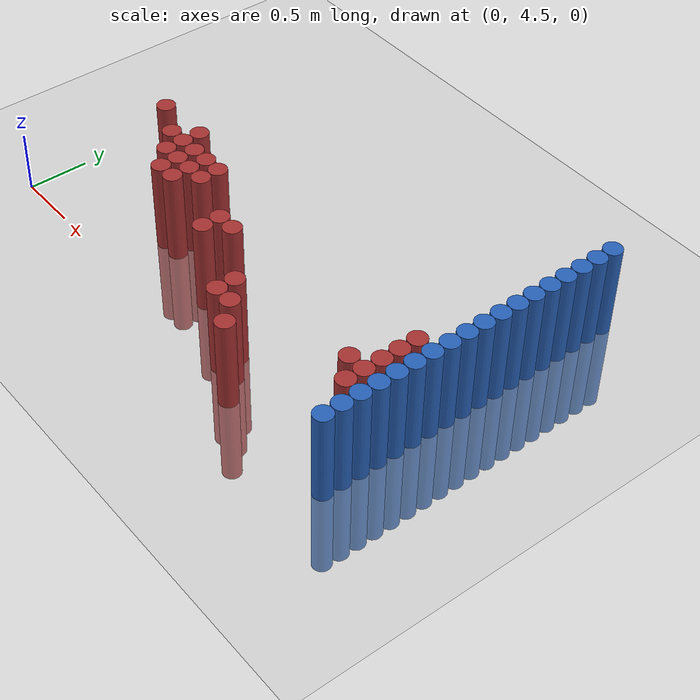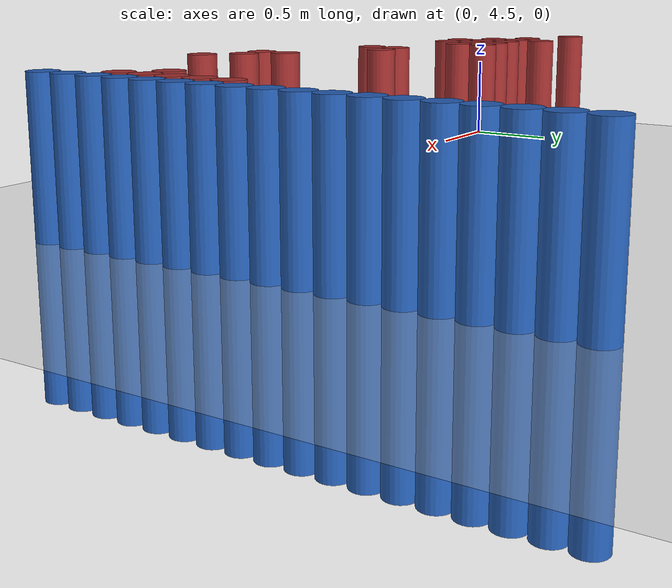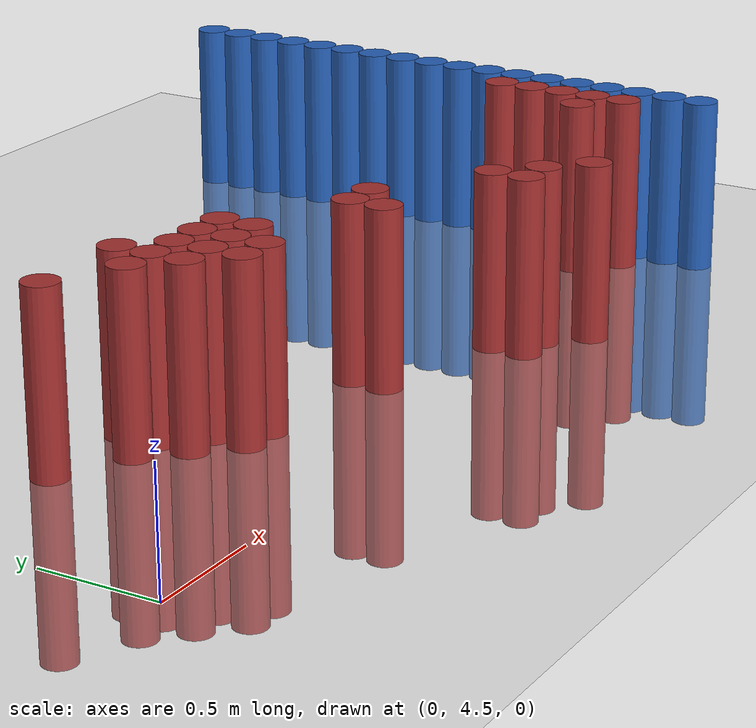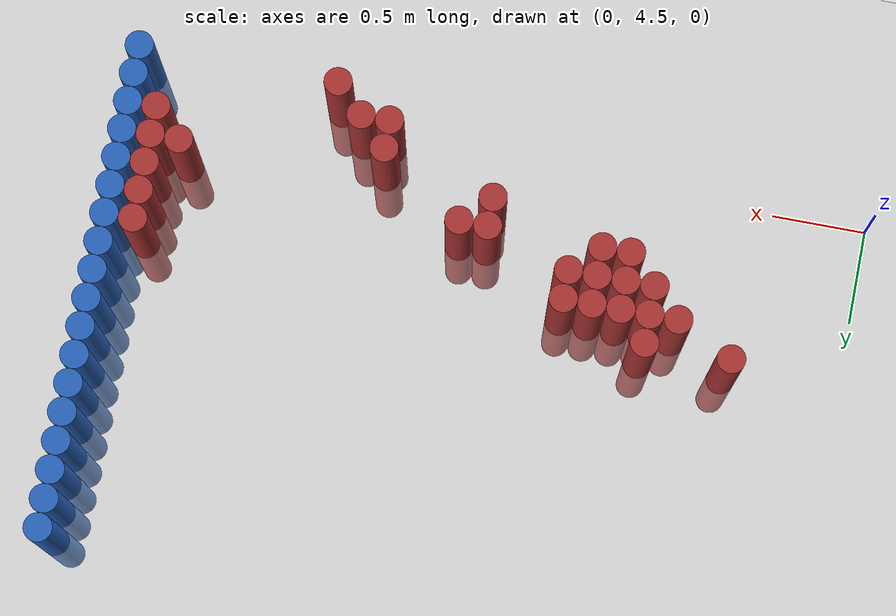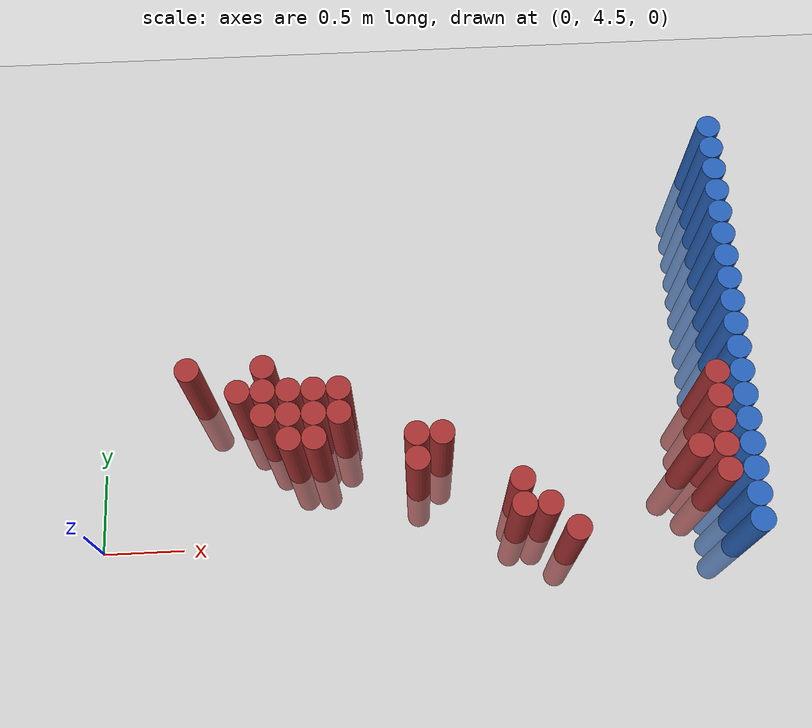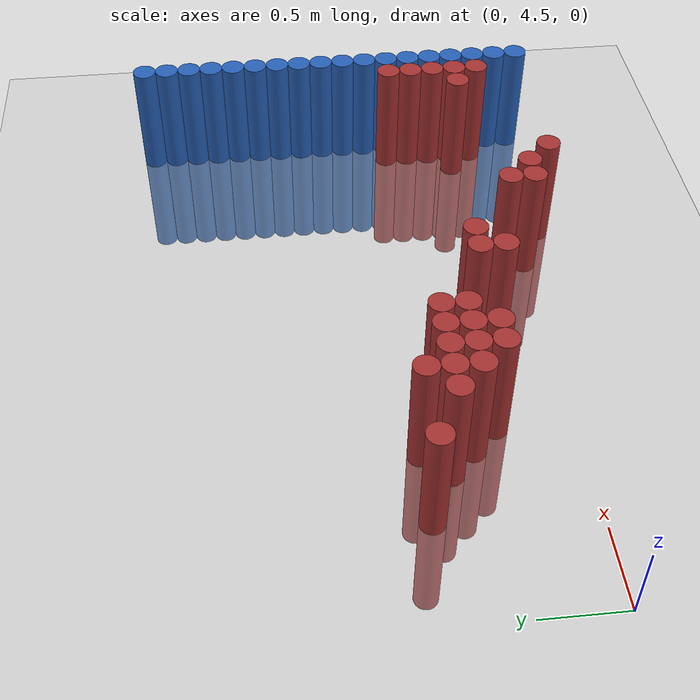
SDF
<sdf version="1.6">
 <world name="default">
  <model name="ground_plane">
   <static>1</static>
   <link name="link">
    <collision name="collision">
     <geometry><plane><normal>0 0 1</normal><size>100 100</size></plane></geometry>
     <surface><friction><ode><mu>100</mu><mu2>50</mu2></ode></friction></surface>
    </collision>
    <visual name="visual">
     <cast_shadows>0</cast_shadows>
     <geometry><plane><normal>0 0 1</normal><size>100 100</size></plane></geometry>
     <material>
      <script><uri>file://media/materials/scripts/gazebo.material</uri><name>Gazebo/Grey</name></script>
     </material>
    </visual>
   </link>
  </model>
  <model name="unit_cylinder_172">
   <static>1</static>
   <pose>3.925000 4.375000 0.000000 0.000000 0.000000 0.000000</pose>
   <link name="link">
    <inertial>
     <mass>1</mass>
     <inertia><ixx>0.145833</ixx><ixy>0</ixy><ixz>0</ixz><iyy>0.145833</iyy><iyz>0</iyz><izz>0.125</izz></inertia>
    </inertial>
    <collision name="collision">
     <geometry><cylinder><radius>0.075000</radius><length>1.5</length></cylinder></geometry>
    </collision>
    <visual name="visual">
     <geometry><cylinder><radius>0.075000</radius><length>1.5</length></cylinder></geometry>
     <material>
      <ambient>0.152000 0.379000 0.720000 1</ambient>
      <diffuse>0.152000 0.379000 0.720000 1</diffuse>
     </material>
     <material>
      <script><name>Gazebo/Grey</name><uri>file://media/materials/scripts/gazebo.material</uri></script>
     </material>
    </visual>
   </link>
  </model>
  <model name="unit_cylinder_174">
   <static>1</static>
   <pose>3.925000 4.525000 0.000000 0.000000 0.000000 0.000000</pose>
   <link name="link">
    <inertial>
     <mass>1</mass>
     <inertia><ixx>0.145833</ixx><ixy>0</ixy><ixz>0</ixz><iyy>0.145833</iyy><iyz>0</iyz><izz>0.125</izz></inertia>
    </inertial>
    <collision name="collision">
     <geometry><cylinder><radius>0.075000</radius><length>1.5</length></cylinder></geometry>
    </collision>
    <visual name="visual">
     <geometry><cylinder><radius>0.075000</radius><length>1.5</length></cylinder></geometry>
     <material>
      <ambient>0.152000 0.379000 0.720000 1</ambient>
      <diffuse>0.152000 0.379000 0.720000 1</diffuse>
     </material>
     <material>
      <script><name>Gazebo/Grey</name><uri>file://media/materials/scripts/gazebo.material</uri></script>
     </material>
    </visual>
   </link>
  </model>
  <model name="unit_cylinder_176">
   <static>1</static>
   <pose>3.925000 4.675000 0.000000 0.000000 0.000000 0.000000</pose>
   <link name="link">
    <inertial>
     <mass>1</mass>
     <inertia><ixx>0.145833</ixx><ixy>0</ixy><ixz>0</ixz><iyy>0.145833</iyy><iyz>0</iyz><izz>0.125</izz></inertia>
    </inertial>
    <collision name="collision">
     <geometry><cylinder><radius>0.075000</radius><length>1.5</length></cylinder></geometry>
    </collision>
    <visual name="visual">
     <geometry><cylinder><radius>0.075000</radius><length>1.5</length></cylinder></geometry>
     <material>
      <ambient>0.152000 0.379000 0.720000 1</ambient>
      <diffuse>0.152000 0.379000 0.720000 1</diffuse>
     </material>
     <material>
      <script><name>Gazebo/Grey</name><uri>file://media/materials/scripts/gazebo.material</uri></script>
     </material>
    </visual>
   </link>
  </model>
  <model name="unit_cylinder_178">
   <static>1</static>
   <pose>3.925000 4.825000 0.000000 0.000000 0.000000 0.000000</pose>
   <link name="link">
    <inertial>
     <mass>1</mass>
     <inertia><ixx>0.145833</ixx><ixy>0</ixy><ixz>0</ixz><iyy>0.145833</iyy><iyz>0</iyz><izz>0.125</izz></inertia>
    </inertial>
    <collision name="collision">
     <geometry><cylinder><radius>0.075000</radius><length>1.5</length></cylinder></geometry>
    </collision>
    <visual name="visual">
     <geometry><cylinder><radius>0.075000</radius><length>1.5</length></cylinder></geometry>
     <material>
      <ambient>0.152000 0.379000 0.720000 1</ambient>
      <diffuse>0.152000 0.379000 0.720000 1</diffuse>
     </material>
     <material>
      <script><name>Gazebo/Grey</name><uri>file://media/materials/scripts/gazebo.material</uri></script>
     </material>
    </visual>
   </link>
  </model>
  <model name="unit_cylinder_180">
   <static>1</static>
   <pose>3.925000 4.975000 0.000000 0.000000 0.000000 0.000000</pose>
   <link name="link">
    <inertial>
     <mass>1</mass>
     <inertia><ixx>0.145833</ixx><ixy>0</ixy><ixz>0</ixz><iyy>0.145833</iyy><iyz>0</iyz><izz>0.125</izz></inertia>
    </inertial>
    <collision name="collision">
     <geometry><cylinder><radius>0.075000</radius><length>1.5</length></cylinder></geometry>
    </collision>
    <visual name="visual">
     <geometry><cylinder><radius>0.075000</radius><length>1.5</length></cylinder></geometry>
     <material>
      <ambient>0.152000 0.379000 0.720000 1</ambient>
      <diffuse>0.152000 0.379000 0.720000 1</diffuse>
     </material>
     <material>
      <script><name>Gazebo/Grey</name><uri>file://media/materials/scripts/gazebo.material</uri></script>
     </material>
    </visual>
   </link>
  </model>
  <model name="unit_cylinder_182">
   <static>1</static>
   <pose>3.925000 5.125000 0.000000 0.000000 0.000000 0.000000</pose>
   <link name="link">
    <inertial>
     <mass>1</mass>
     <inertia><ixx>0.145833</ixx><ixy>0</ixy><ixz>0</ixz><iyy>0.145833</iyy><iyz>0</iyz><izz>0.125</izz></inertia>
    </inertial>
    <collision name="collision">
     <geometry><cylinder><radius>0.075000</radius><length>1.5</length></cylinder></geometry>
    </collision>
    <visual name="visual">
     <geometry><cylinder><radius>0.075000</radius><length>1.5</length></cylinder></geometry>
     <material>
      <ambient>0.152000 0.379000 0.720000 1</ambient>
      <diffuse>0.152000 0.379000 0.720000 1</diffuse>
     </material>
     <material>
      <script><name>Gazebo/Grey</name><uri>file://media/materials/scripts/gazebo.material</uri></script>
     </material>
    </visual>
   </link>
  </model>
  <model name="unit_cylinder_184">
   <static>1</static>
   <pose>3.925000 5.275000 0.000000 0.000000 0.000000 0.000000</pose>
   <link name="link">
    <inertial>
     <mass>1</mass>
     <inertia><ixx>0.145833</ixx><ixy>0</ixy><ixz>0</ixz><iyy>0.145833</iyy><iyz>0</iyz><izz>0.125</izz></inertia>
    </inertial>
    <collision name="collision">
     <geometry><cylinder><radius>0.075000</radius><length>1.5</length></cylinder></geometry>
    </collision>
    <visual name="visual">
     <geometry><cylinder><radius>0.075000</radius><length>1.5</length></cylinder></geometry>
     <material>
      <ambient>0.152000 0.379000 0.720000 1</ambient>
      <diffuse>0.152000 0.379000 0.720000 1</diffuse>
     </material>
     <material>
      <script><name>Gazebo/Grey</name><uri>file://media/materials/scripts/gazebo.material</uri></script>
     </material>
    </visual>
   </link>
  </model>
  <model name="unit_cylinder_186">
   <static>1</static>
   <pose>3.925000 5.425000 0.000000 0.000000 0.000000 0.000000</pose>
   <link name="link">
    <inertial>
     <mass>1</mass>
     <inertia><ixx>0.145833</ixx><ixy>0</ixy><ixz>0</ixz><iyy>0.145833</iyy><iyz>0</iyz><izz>0.125</izz></inertia>
    </inertial>
    <collision name="collision">
     <geometry><cylinder><radius>0.075000</radius><length>1.5</length></cylinder></geometry>
    </collision>
    <visual name="visual">
     <geometry><cylinder><radius>0.075000</radius><length>1.5</length></cylinder></geometry>
     <material>
      <ambient>0.152000 0.379000 0.720000 1</ambient>
      <diffuse>0.152000 0.379000 0.720000 1</diffuse>
     </material>
     <material>
      <script><name>Gazebo/Grey</name><uri>file://media/materials/scripts/gazebo.material</uri></script>
     </material>
    </visual>
   </link>
  </model>
  <model name="unit_cylinder_188">
   <static>1</static>
   <pose>3.925000 5.575000 0.000000 0.000000 0.000000 0.000000</pose>
   <link name="link">
    <inertial>
     <mass>1</mass>
     <inertia><ixx>0.145833</ixx><ixy>0</ixy><ixz>0</ixz><iyy>0.145833</iyy><iyz>0</iyz><izz>0.125</izz></inertia>
    </inertial>
    <collision name="collision">
     <geometry><cylinder><radius>0.075000</radius><length>1.5</length></cylinder></geometry>
    </collision>
    <visual name="visual">
     <geometry><cylinder><radius>0.075000</radius><length>1.5</length></cylinder></geometry>
     <material>
      <ambient>0.152000 0.379000 0.720000 1</ambient>
      <diffuse>0.152000 0.379000 0.720000 1</diffuse>
     </material>
     <material>
      <script><name>Gazebo/Grey</name><uri>file://media/materials/scripts/gazebo.material</uri></script>
     </material>
    </visual>
   </link>
  </model>
  <model name="unit_cylinder_190">
   <static>1</static>
   <pose>3.925000 5.725000 0.000000 0.000000 0.000000 0.000000</pose>
   <link name="link">
    <inertial>
     <mass>1</mass>
     <inertia><ixx>0.145833</ixx><ixy>0</ixy><ixz>0</ixz><iyy>0.145833</iyy><iyz>0</iyz><izz>0.125</izz></inertia>
    </inertial>
    <collision name="collision">
     <geometry><cylinder><radius>0.075000</radius><length>1.5</length></cylinder></geometry>
    </collision>
    <visual name="visual">
     <geometry><cylinder><radius>0.075000</radius><length>1.5</length></cylinder></geometry>
     <material>
      <ambient>0.152000 0.379000 0.720000 1</ambient>
      <diffuse>0.152000 0.379000 0.720000 1</diffuse>
     </material>
     <material>
      <script><name>Gazebo/Grey</name><uri>file://media/materials/scripts/gazebo.material</uri></script>
     </material>
    </visual>
   </link>
  </model>
  <model name="unit_cylinder_192">
   <static>1</static>
   <pose>3.925000 5.875000 0.000000 0.000000 0.000000 0.000000</pose>
   <link name="link">
    <inertial>
     <mass>1</mass>
     <inertia><ixx>0.145833</ixx><ixy>0</ixy><ixz>0</ixz><iyy>0.145833</iyy><iyz>0</iyz><izz>0.125</izz></inertia>
    </inertial>
    <collision name="collision">
     <geometry><cylinder><radius>0.075000</radius><length>1.5</length></cylinder></geometry>
    </collision>
    <visual name="visual">
     <geometry><cylinder><radius>0.075000</radius><length>1.5</length></cylinder></geometry>
     <material>
      <ambient>0.152000 0.379000 0.720000 1</ambient>
      <diffuse>0.152000 0.379000 0.720000 1</diffuse>
     </material>
     <material>
      <script><name>Gazebo/Grey</name><uri>file://media/materials/scripts/gazebo.material</uri></script>
     </material>
    </visual>
   </link>
  </model>
  <model name="unit_cylinder_194">
   <static>1</static>
   <pose>3.925000 6.025000 0.000000 0.000000 0.000000 0.000000</pose>
   <link name="link">
    <inertial>
     <mass>1</mass>
     <inertia><ixx>0.145833</ixx><ixy>0</ixy><ixz>0</ixz><iyy>0.145833</iyy><iyz>0</iyz><izz>0.125</izz></inertia>
    </inertial>
    <collision name="collision">
     <geometry><cylinder><radius>0.075000</radius><length>1.5</length></cylinder></geometry>
    </collision>
    <visual name="visual">
     <geometry><cylinder><radius>0.075000</radius><length>1.5</length></cylinder></geometry>
     <material>
      <ambient>0.152000 0.379000 0.720000 1</ambient>
      <diffuse>0.152000 0.379000 0.720000 1</diffuse>
     </material>
     <material>
      <script><name>Gazebo/Grey</name><uri>file://media/materials/scripts/gazebo.material</uri></script>
     </material>
    </visual>
   </link>
  </model>
  <model name="unit_cylinder_196">
   <static>1</static>
   <pose>3.925000 6.175000 0.000000 0.000000 0.000000 0.000000</pose>
   <link name="link">
    <inertial>
     <mass>1</mass>
     <inertia><ixx>0.145833</ixx><ixy>0</ixy><ixz>0</ixz><iyy>0.145833</iyy><iyz>0</iyz><izz>0.125</izz></inertia>
    </inertial>
    <collision name="collision">
     <geometry><cylinder><radius>0.075000</radius><length>1.5</length></cylinder></geometry>
    </collision>
    <visual name="visual">
     <geometry><cylinder><radius>0.075000</radius><length>1.5</length></cylinder></geometry>
     <material>
      <ambient>0.152000 0.379000 0.720000 1</ambient>
      <diffuse>0.152000 0.379000 0.720000 1</diffuse>
     </material>
     <material>
      <script><name>Gazebo/Grey</name><uri>file://media/materials/scripts/gazebo.material</uri></script>
     </material>
    </visual>
   </link>
  </model>
  <model name="unit_cylinder_198">
   <static>1</static>
   <pose>3.925000 6.325000 0.000000 0.000000 0.000000 0.000000</pose>
   <link name="link">
    <inertial>
     <mass>1</mass>
     <inertia><ixx>0.145833</ixx><ixy>0</ixy><ixz>0</ixz><iyy>0.145833</iyy><iyz>0</iyz><izz>0.125</izz></inertia>
    </inertial>
    <collision name="collision">
     <geometry><cylinder><radius>0.075000</radius><length>1.5</length></cylinder></geometry>
    </collision>
    <visual name="visual">
     <geometry><cylinder><radius>0.075000</radius><length>1.5</length></cylinder></geometry>
     <material>
      <ambient>0.152000 0.379000 0.720000 1</ambient>
      <diffuse>0.152000 0.379000 0.720000 1</diffuse>
     </material>
     <material>
      <script><name>Gazebo/Grey</name><uri>file://media/materials/scripts/gazebo.material</uri></script>
     </material>
    </visual>
   </link>
  </model>
  <model name="unit_cylinder_200">
   <static>1</static>
   <pose>3.925000 6.475000 0.000000 0.000000 0.000000 0.000000</pose>
   <link name="link">
    <inertial>
     <mass>1</mass>
     <inertia><ixx>0.145833</ixx><ixy>0</ixy><ixz>0</ixz><iyy>0.145833</iyy><iyz>0</iyz><izz>0.125</izz></inertia>
    </inertial>
    <collision name="collision">
     <geometry><cylinder><radius>0.075000</radius><length>1.5</length></cylinder></geometry>
    </collision>
    <visual name="visual">
     <geometry><cylinder><radius>0.075000</radius><length>1.5</length></cylinder></geometry>
     <material>
      <ambient>0.152000 0.379000 0.720000 1</ambient>
      <diffuse>0.152000 0.379000 0.720000 1</diffuse>
     </material>
     <material>
      <script><name>Gazebo/Grey</name><uri>file://media/materials/scripts/gazebo.material</uri></script>
     </material>
    </visual>
   </link>
  </model>
  <model name="unit_cylinder_202">
   <static>1</static>
   <pose>3.925000 6.625000 0.000000 0.000000 0.000000 0.000000</pose>
   <link name="link">
    <inertial>
     <mass>1</mass>
     <inertia><ixx>0.145833</ixx><ixy>0</ixy><ixz>0</ixz><iyy>0.145833</iyy><iyz>0</iyz><izz>0.125</izz></inertia>
    </inertial>
    <collision name="collision">
     <geometry><cylinder><radius>0.075000</radius><length>1.5</length></cylinder></geometry>
    </collision>
    <visual name="visual">
     <geometry><cylinder><radius>0.075000</radius><length>1.5</length></cylinder></geometry>
     <material>
      <ambient>0.152000 0.379000 0.720000 1</ambient>
      <diffuse>0.152000 0.379000 0.720000 1</diffuse>
     </material>
     <material>
      <script><name>Gazebo/Grey</name><uri>file://media/materials/scripts/gazebo.material</uri></script>
     </material>
    </visual>
   </link>
  </model>
  <model name="unit_cylinder_204">
   <static>1</static>
   <pose>3.925000 6.775000 0.000000 0.000000 0.000000 0.000000</pose>
   <link name="link">
    <inertial>
     <mass>1</mass>
     <inertia><ixx>0.145833</ixx><ixy>0</ixy><ixz>0</ixz><iyy>0.145833</iyy><iyz>0</iyz><izz>0.125</izz></inertia>
    </inertial>
    <collision name="collision">
     <geometry><cylinder><radius>0.075000</radius><length>1.5</length></cylinder></geometry>
    </collision>
    <visual name="visual">
     <geometry><cylinder><radius>0.075000</radius><length>1.5</length></cylinder></geometry>
     <material>
      <ambient>0.152000 0.379000 0.720000 1</ambient>
      <diffuse>0.152000 0.379000 0.720000 1</diffuse>
     </material>
     <material>
      <script><name>Gazebo/Grey</name><uri>file://media/materials/scripts/gazebo.material</uri></script>
     </material>
    </visual>
   </link>
  </model>
  <model name="unit_cylinder_206">
   <static>1</static>
   <pose>3.925000 6.925000 0.000000 0.000000 0.000000 0.000000</pose>
   <link name="link">
    <inertial>
     <mass>1</mass>
     <inertia><ixx>0.145833</ixx><ixy>0</ixy><ixz>0</ixz><iyy>0.145833</iyy><iyz>0</iyz><izz>0.125</izz></inertia>
    </inertial>
    <collision name="collision">
     <geometry><cylinder><radius>0.075000</radius><length>1.5</length></cylinder></geometry>
    </collision>
    <visual name="visual">
     <geometry><cylinder><radius>0.075000</radius><length>1.5</length></cylinder></geometry>
     <material>
      <ambient>0.152000 0.379000 0.720000 1</ambient>
      <diffuse>0.152000 0.379000 0.720000 1</diffuse>
     </material>
     <material>
      <script><name>Gazebo/Grey</name><uri>file://media/materials/scripts/gazebo.material</uri></script>
     </material>
    </visual>
   </link>
  </model>
  <model name="unit_cylinder_386">
   <static>1</static>
   <pose>0.625000 5.425000 0.000000 0.000000 0.000000 0.000000</pose>
   <link name="link">
    <inertial>
     <mass>1</mass>
     <inertia><ixx>0.145833</ixx><ixy>0</ixy><ixz>0</ixz><iyy>0.145833</iyy><iyz>0</iyz><izz>0.125</izz></inertia>
    </inertial>
    <collision name="collision">
     <geometry><cylinder><radius>0.075000</radius><length>1.5</length></cylinder></geometry>
    </collision>
    <visual name="visual">
     <geometry><cylinder><radius>0.075000</radius><length>1.5</length></cylinder></geometry>
     <material>
      <ambient>0.648000 0.192000 0.192000 1</ambient>
      <diffuse>0.648000 0.192000 0.192000 1</diffuse>
     </material>
     <material>
      <script><name>Gazebo/Grey</name><uri>file://media/materials/scripts/gazebo.material</uri></script>
     </material>
    </visual>
   </link>
  </model>
  <model name="unit_cylinder_402">
   <static>1</static>
   <pose>0.925000 5.275000 0.000000 0.000000 0.000000 0.000000</pose>
   <link name="link">
    <inertial>
     <mass>1</mass>
     <inertia><ixx>0.145833</ixx><ixy>0</ixy><ixz>0</ixz><iyy>0.145833</iyy><iyz>0</iyz><izz>0.125</izz></inertia>
    </inertial>
    <collision name="collision">
     <geometry><cylinder><radius>0.075000</radius><length>1.5</length></cylinder></geometry>
    </collision>
    <visual name="visual">
     <geometry><cylinder><radius>0.075000</radius><length>1.5</length></cylinder></geometry>
     <material>
      <ambient>0.648000 0.192000 0.192000 1</ambient>
      <diffuse>0.648000 0.192000 0.192000 1</diffuse>
     </material>
     <material>
      <script><name>Gazebo/Grey</name><uri>file://media/materials/scripts/gazebo.material</uri></script>
     </material>
    </visual>
   </link>
  </model>
  <model name="unit_cylinder_413">
   <static>1</static>
   <pose>1.075000 5.125000 0.000000 0.000000 0.000000 0.000000</pose>
   <link name="link">
    <inertial>
     <mass>1</mass>
     <inertia><ixx>0.145833</ixx><ixy>0</ixy><ixz>0</ixz><iyy>0.145833</iyy><iyz>0</iyz><izz>0.125</izz></inertia>
    </inertial>
    <collision name="collision">
     <geometry><cylinder><radius>0.075000</radius><length>1.5</length></cylinder></geometry>
    </collision>
    <visual name="visual">
     <geometry><cylinder><radius>0.075000</radius><length>1.5</length></cylinder></geometry>
     <material>
      <ambient>0.648000 0.192000 0.192000 1</ambient>
      <diffuse>0.648000 0.192000 0.192000 1</diffuse>
     </material>
     <material>
      <script><name>Gazebo/Grey</name><uri>file://media/materials/scripts/gazebo.material</uri></script>
     </material>
    </visual>
   </link>
  </model>
  <model name="unit_cylinder_414">
   <static>1</static>
   <pose>1.075000 5.275000 0.000000 0.000000 0.000000 0.000000</pose>
   <link name="link">
    <inertial>
     <mass>1</mass>
     <inertia><ixx>0.145833</ixx><ixy>0</ixy><ixz>0</ixz><iyy>0.145833</iyy><iyz>0</iyz><izz>0.125</izz></inertia>
    </inertial>
    <collision name="collision">
     <geometry><cylinder><radius>0.075000</radius><length>1.5</length></cylinder></geometry>
    </collision>
    <visual name="visual">
     <geometry><cylinder><radius>0.075000</radius><length>1.5</length></cylinder></geometry>
     <material>
      <ambient>0.648000 0.192000 0.192000 1</ambient>
      <diffuse>0.648000 0.192000 0.192000 1</diffuse>
     </material>
     <material>
      <script><name>Gazebo/Grey</name><uri>file://media/materials/scripts/gazebo.material</uri></script>
     </material>
    </visual>
   </link>
  </model>
  <model name="unit_cylinder_415">
   <static>1</static>
   <pose>1.075000 5.425000 0.000000 0.000000 0.000000 0.000000</pose>
   <link name="link">
    <inertial>
     <mass>1</mass>
     <inertia><ixx>0.145833</ixx><ixy>0</ixy><ixz>0</ixz><iyy>0.145833</iyy><iyz>0</iyz><izz>0.125</izz></inertia>
    </inertial>
    <collision name="collision">
     <geometry><cylinder><radius>0.075000</radius><length>1.5</length></cylinder></geometry>
    </collision>
    <visual name="visual">
     <geometry><cylinder><radius>0.075000</radius><length>1.5</length></cylinder></geometry>
     <material>
      <ambient>0.648000 0.192000 0.192000 1</ambient>
      <diffuse>0.648000 0.192000 0.192000 1</diffuse>
     </material>
     <material>
      <script><name>Gazebo/Grey</name><uri>file://media/materials/scripts/gazebo.material</uri></script>
     </material>
    </visual>
   </link>
  </model>
  <model name="unit_cylinder_425">
   <static>1</static>
   <pose>1.225000 4.975000 0.000000 0.000000 0.000000 0.000000</pose>
   <link name="link">
    <inertial>
     <mass>1</mass>
     <inertia><ixx>0.145833</ixx><ixy>0</ixy><ixz>0</ixz><iyy>0.145833</iyy><iyz>0</iyz><izz>0.125</izz></inertia>
    </inertial>
    <collision name="collision">
     <geometry><cylinder><radius>0.075000</radius><length>1.5</length></cylinder></geometry>
    </collision>
    <visual name="visual">
     <geometry><cylinder><radius>0.075000</radius><length>1.5</length></cylinder></geometry>
     <material>
      <ambient>0.648000 0.192000 0.192000 1</ambient>
      <diffuse>0.648000 0.192000 0.192000 1</diffuse>
     </material>
     <material>
      <script><name>Gazebo/Grey</name><uri>file://media/materials/scripts/gazebo.material</uri></script>
     </material>
    </visual>
   </link>
  </model>
  <model name="unit_cylinder_426">
   <static>1</static>
   <pose>1.225000 5.125000 0.000000 0.000000 0.000000 0.000000</pose>
   <link name="link">
    <inertial>
     <mass>1</mass>
     <inertia><ixx>0.145833</ixx><ixy>0</ixy><ixz>0</ixz><iyy>0.145833</iyy><iyz>0</iyz><izz>0.125</izz></inertia>
    </inertial>
    <collision name="collision">
     <geometry><cylinder><radius>0.075000</radius><length>1.5</length></cylinder></geometry>
    </collision>
    <visual name="visual">
     <geometry><cylinder><radius>0.075000</radius><length>1.5</length></cylinder></geometry>
     <material>
      <ambient>0.648000 0.192000 0.192000 1</ambient>
      <diffuse>0.648000 0.192000 0.192000 1</diffuse>
     </material>
     <material>
      <script><name>Gazebo/Grey</name><uri>file://media/materials/scripts/gazebo.material</uri></script>
     </material>
    </visual>
   </link>
  </model>
  <model name="unit_cylinder_427">
   <static>1</static>
   <pose>1.225000 5.275000 0.000000 0.000000 0.000000 0.000000</pose>
   <link name="link">
    <inertial>
     <mass>1</mass>
     <inertia><ixx>0.145833</ixx><ixy>0</ixy><ixz>0</ixz><iyy>0.145833</iyy><iyz>0</iyz><izz>0.125</izz></inertia>
    </inertial>
    <collision name="collision">
     <geometry><cylinder><radius>0.075000</radius><length>1.5</length></cylinder></geometry>
    </collision>
    <visual name="visual">
     <geometry><cylinder><radius>0.075000</radius><length>1.5</length></cylinder></geometry>
     <material>
      <ambient>0.648000 0.192000 0.192000 1</ambient>
      <diffuse>0.648000 0.192000 0.192000 1</diffuse>
     </material>
     <material>
      <script><name>Gazebo/Grey</name><uri>file://media/materials/scripts/gazebo.material</uri></script>
     </material>
    </visual>
   </link>
  </model>
  <model name="unit_cylinder_431">
   <static>1</static>
   <pose>1.375000 4.975000 0.000000 0.000000 0.000000 0.000000</pose>
   <link name="link">
    <inertial>
     <mass>1</mass>
     <inertia><ixx>0.145833</ixx><ixy>0</ixy><ixz>0</ixz><iyy>0.145833</iyy><iyz>0</iyz><izz>0.125</izz></inertia>
    </inertial>
    <collision name="collision">
     <geometry><cylinder><radius>0.075000</radius><length>1.5</length></cylinder></geometry>
    </collision>
    <visual name="visual">
     <geometry><cylinder><radius>0.075000</radius><length>1.5</length></cylinder></geometry>
     <material>
      <ambient>0.648000 0.192000 0.192000 1</ambient>
      <diffuse>0.648000 0.192000 0.192000 1</diffuse>
     </material>
     <material>
      <script><name>Gazebo/Grey</name><uri>file://media/materials/scripts/gazebo.material</uri></script>
     </material>
    </visual>
   </link>
  </model>
  <model name="unit_cylinder_432">
   <static>1</static>
   <pose>1.375000 5.125000 0.000000 0.000000 0.000000 0.000000</pose>
   <link name="link">
    <inertial>
     <mass>1</mass>
     <inertia><ixx>0.145833</ixx><ixy>0</ixy><ixz>0</ixz><iyy>0.145833</iyy><iyz>0</iyz><izz>0.125</izz></inertia>
    </inertial>
    <collision name="collision">
     <geometry><cylinder><radius>0.075000</radius><length>1.5</length></cylinder></geometry>
    </collision>
    <visual name="visual">
     <geometry><cylinder><radius>0.075000</radius><length>1.5</length></cylinder></geometry>
     <material>
      <ambient>0.648000 0.192000 0.192000 1</ambient>
      <diffuse>0.648000 0.192000 0.192000 1</diffuse>
     </material>
     <material>
      <script><name>Gazebo/Grey</name><uri>file://media/materials/scripts/gazebo.material</uri></script>
     </material>
    </visual>
   </link>
  </model>
  <model name="unit_cylinder_433">
   <static>1</static>
   <pose>1.375000 5.275000 0.000000 0.000000 0.000000 0.000000</pose>
   <link name="link">
    <inertial>
     <mass>1</mass>
     <inertia><ixx>0.145833</ixx><ixy>0</ixy><ixz>0</ixz><iyy>0.145833</iyy><iyz>0</iyz><izz>0.125</izz></inertia>
    </inertial>
    <collision name="collision">
     <geometry><cylinder><radius>0.075000</radius><length>1.5</length></cylinder></geometry>
    </collision>
    <visual name="visual">
     <geometry><cylinder><radius>0.075000</radius><length>1.5</length></cylinder></geometry>
     <material>
      <ambient>0.648000 0.192000 0.192000 1</ambient>
      <diffuse>0.648000 0.192000 0.192000 1</diffuse>
     </material>
     <material>
      <script><name>Gazebo/Grey</name><uri>file://media/materials/scripts/gazebo.material</uri></script>
     </material>
    </visual>
   </link>
  </model>
  <model name="unit_cylinder_436">
   <static>1</static>
   <pose>1.525000 5.125000 0.000000 0.000000 0.000000 0.000000</pose>
   <link name="link">
    <inertial>
     <mass>1</mass>
     <inertia><ixx>0.145833</ixx><ixy>0</ixy><ixz>0</ixz><iyy>0.145833</iyy><iyz>0</iyz><izz>0.125</izz></inertia>
    </inertial>
    <collision name="collision">
     <geometry><cylinder><radius>0.075000</radius><length>1.5</length></cylinder></geometry>
    </collision>
    <visual name="visual">
     <geometry><cylinder><radius>0.075000</radius><length>1.5</length></cylinder></geometry>
     <material>
      <ambient>0.648000 0.192000 0.192000 1</ambient>
      <diffuse>0.648000 0.192000 0.192000 1</diffuse>
     </material>
     <material>
      <script><name>Gazebo/Grey</name><uri>file://media/materials/scripts/gazebo.material</uri></script>
     </material>
    </visual>
   </link>
  </model>
  <model name="unit_cylinder_437">
   <static>1</static>
   <pose>1.525000 5.275000 0.000000 0.000000 0.000000 0.000000</pose>
   <link name="link">
    <inertial>
     <mass>1</mass>
     <inertia><ixx>0.145833</ixx><ixy>0</ixy><ixz>0</ixz><iyy>0.145833</iyy><iyz>0</iyz><izz>0.125</izz></inertia>
    </inertial>
    <collision name="collision">
     <geometry><cylinder><radius>0.075000</radius><length>1.5</length></cylinder></geometry>
    </collision>
    <visual name="visual">
     <geometry><cylinder><radius>0.075000</radius><length>1.5</length></cylinder></geometry>
     <material>
      <ambient>0.648000 0.192000 0.192000 1</ambient>
      <diffuse>0.648000 0.192000 0.192000 1</diffuse>
     </material>
     <material>
      <script><name>Gazebo/Grey</name><uri>file://media/materials/scripts/gazebo.material</uri></script>
     </material>
    </visual>
   </link>
  </model>
  <model name="unit_cylinder_438">
   <static>1</static>
   <pose>1.975000 4.825000 0.000000 0.000000 0.000000 0.000000</pose>
   <link name="link">
    <inertial>
     <mass>1</mass>
     <inertia><ixx>0.145833</ixx><ixy>0</ixy><ixz>0</ixz><iyy>0.145833</iyy><iyz>0</iyz><izz>0.125</izz></inertia>
    </inertial>
    <collision name="collision">
     <geometry><cylinder><radius>0.075000</radius><length>1.5</length></cylinder></geometry>
    </collision>
    <visual name="visual">
     <geometry><cylinder><radius>0.075000</radius><length>1.5</length></cylinder></geometry>
     <material>
      <ambient>0.648000 0.192000 0.192000 1</ambient>
      <diffuse>0.648000 0.192000 0.192000 1</diffuse>
     </material>
     <material>
      <script><name>Gazebo/Grey</name><uri>file://media/materials/scripts/gazebo.material</uri></script>
     </material>
    </visual>
   </link>
  </model>
  <model name="unit_cylinder_439">
   <static>1</static>
   <pose>1.975000 4.975000 0.000000 0.000000 0.000000 0.000000</pose>
   <link name="link">
    <inertial>
     <mass>1</mass>
     <inertia><ixx>0.145833</ixx><ixy>0</ixy><ixz>0</ixz><iyy>0.145833</iyy><iyz>0</iyz><izz>0.125</izz></inertia>
    </inertial>
    <collision name="collision">
     <geometry><cylinder><radius>0.075000</radius><length>1.5</length></cylinder></geometry>
    </collision>
    <visual name="visual">
     <geometry><cylinder><radius>0.075000</radius><length>1.5</length></cylinder></geometry>
     <material>
      <ambient>0.648000 0.192000 0.192000 1</ambient>
      <diffuse>0.648000 0.192000 0.192000 1</diffuse>
     </material>
     <material>
      <script><name>Gazebo/Grey</name><uri>file://media/materials/scripts/gazebo.material</uri></script>
     </material>
    </visual>
   </link>
  </model>
  <model name="unit_cylinder_442">
   <static>1</static>
   <pose>2.125000 4.975000 0.000000 0.000000 0.000000 0.000000</pose>
   <link name="link">
    <inertial>
     <mass>1</mass>
     <inertia><ixx>0.145833</ixx><ixy>0</ixy><ixz>0</ixz><iyy>0.145833</iyy><iyz>0</iyz><izz>0.125</izz></inertia>
    </inertial>
    <collision name="collision">
     <geometry><cylinder><radius>0.075000</radius><length>1.5</length></cylinder></geometry>
    </collision>
    <visual name="visual">
     <geometry><cylinder><radius>0.075000</radius><length>1.5</length></cylinder></geometry>
     <material>
      <ambient>0.648000 0.192000 0.192000 1</ambient>
      <diffuse>0.648000 0.192000 0.192000 1</diffuse>
     </material>
     <material>
      <script><name>Gazebo/Grey</name><uri>file://media/materials/scripts/gazebo.material</uri></script>
     </material>
    </visual>
   </link>
  </model>
  <model name="unit_cylinder_455">
   <static>1</static>
   <pose>2.575000 4.525000 0.000000 0.000000 0.000000 0.000000</pose>
   <link name="link">
    <inertial>
     <mass>1</mass>
     <inertia><ixx>0.145833</ixx><ixy>0</ixy><ixz>0</ixz><iyy>0.145833</iyy><iyz>0</iyz><izz>0.125</izz></inertia>
    </inertial>
    <collision name="collision">
     <geometry><cylinder><radius>0.075000</radius><length>1.5</length></cylinder></geometry>
    </collision>
    <visual name="visual">
     <geometry><cylinder><radius>0.075000</radius><length>1.5</length></cylinder></geometry>
     <material>
      <ambient>0.648000 0.192000 0.192000 1</ambient>
      <diffuse>0.648000 0.192000 0.192000 1</diffuse>
     </material>
     <material>
      <script><name>Gazebo/Grey</name><uri>file://media/materials/scripts/gazebo.material</uri></script>
     </material>
    </visual>
   </link>
  </model>
  <model name="unit_cylinder_456">
   <static>1</static>
   <pose>2.575000 4.675000 0.000000 0.000000 0.000000 0.000000</pose>
   <link name="link">
    <inertial>
     <mass>1</mass>
     <inertia><ixx>0.145833</ixx><ixy>0</ixy><ixz>0</ixz><iyy>0.145833</iyy><iyz>0</iyz><izz>0.125</izz></inertia>
    </inertial>
    <collision name="collision">
     <geometry><cylinder><radius>0.075000</radius><length>1.5</length></cylinder></geometry>
    </collision>
    <visual name="visual">
     <geometry><cylinder><radius>0.075000</radius><length>1.5</length></cylinder></geometry>
     <material>
      <ambient>0.648000 0.192000 0.192000 1</ambient>
      <diffuse>0.648000 0.192000 0.192000 1</diffuse>
     </material>
     <material>
      <script><name>Gazebo/Grey</name><uri>file://media/materials/scripts/gazebo.material</uri></script>
     </material>
    </visual>
   </link>
  </model>
  <model name="unit_cylinder_461">
   <static>1</static>
   <pose>2.725000 4.525000 0.000000 0.000000 0.000000 0.000000</pose>
   <link name="link">
    <inertial>
     <mass>1</mass>
     <inertia><ixx>0.145833</ixx><ixy>0</ixy><ixz>0</ixz><iyy>0.145833</iyy><iyz>0</iyz><izz>0.125</izz></inertia>
    </inertial>
    <collision name="collision">
     <geometry><cylinder><radius>0.075000</radius><length>1.5</length></cylinder></geometry>
    </collision>
    <visual name="visual">
     <geometry><cylinder><radius>0.075000</radius><length>1.5</length></cylinder></geometry>
     <material>
      <ambient>0.648000 0.192000 0.192000 1</ambient>
      <diffuse>0.648000 0.192000 0.192000 1</diffuse>
     </material>
     <material>
      <script><name>Gazebo/Grey</name><uri>file://media/materials/scripts/gazebo.material</uri></script>
     </material>
    </visual>
   </link>
  </model>
  <model name="unit_cylinder_466">
   <static>1</static>
   <pose>2.875000 4.375000 0.000000 0.000000 0.000000 0.000000</pose>
   <link name="link">
    <inertial>
     <mass>1</mass>
     <inertia><ixx>0.145833</ixx><ixy>0</ixy><ixz>0</ixz><iyy>0.145833</iyy><iyz>0</iyz><izz>0.125</izz></inertia>
    </inertial>
    <collision name="collision">
     <geometry><cylinder><radius>0.075000</radius><length>1.5</length></cylinder></geometry>
    </collision>
    <visual name="visual">
     <geometry><cylinder><radius>0.075000</radius><length>1.5</length></cylinder></geometry>
     <material>
      <ambient>0.648000 0.192000 0.192000 1</ambient>
      <diffuse>0.648000 0.192000 0.192000 1</diffuse>
     </material>
     <material>
      <script><name>Gazebo/Grey</name><uri>file://media/materials/scripts/gazebo.material</uri></script>
     </material>
    </visual>
   </link>
  </model>
  <model name="unit_cylinder_491">
   <static>1</static>
   <pose>3.625000 4.825000 0.000000 0.000000 0.000000 0.000000</pose>
   <link name="link">
    <inertial>
     <mass>1</mass>
     <inertia><ixx>0.145833</ixx><ixy>0</ixy><ixz>0</ixz><iyy>0.145833</iyy><iyz>0</iyz><izz>0.125</izz></inertia>
    </inertial>
    <collision name="collision">
     <geometry><cylinder><radius>0.075000</radius><length>1.5</length></cylinder></geometry>
    </collision>
    <visual name="visual">
     <geometry><cylinder><radius>0.075000</radius><length>1.5</length></cylinder></geometry>
     <material>
      <ambient>0.648000 0.192000 0.192000 1</ambient>
      <diffuse>0.648000 0.192000 0.192000 1</diffuse>
     </material>
     <material>
      <script><name>Gazebo/Grey</name><uri>file://media/materials/scripts/gazebo.material</uri></script>
     </material>
    </visual>
   </link>
  </model>
  <model name="unit_cylinder_510">
   <static>1</static>
   <pose>3.775000 4.675000 0.000000 0.000000 0.000000 0.000000</pose>
   <link name="link">
    <inertial>
     <mass>1</mass>
     <inertia><ixx>0.145833</ixx><ixy>0</ixy><ixz>0</ixz><iyy>0.145833</iyy><iyz>0</iyz><izz>0.125</izz></inertia>
    </inertial>
    <collision name="collision">
     <geometry><cylinder><radius>0.075000</radius><length>1.5</length></cylinder></geometry>
    </collision>
    <visual name="visual">
     <geometry><cylinder><radius>0.075000</radius><length>1.5</length></cylinder></geometry>
     <material>
      <ambient>0.648000 0.192000 0.192000 1</ambient>
      <diffuse>0.648000 0.192000 0.192000 1</diffuse>
     </material>
     <material>
      <script><name>Gazebo/Grey</name><uri>file://media/materials/scripts/gazebo.material</uri></script>
     </material>
    </visual>
   </link>
  </model>
  <model name="unit_cylinder_511">
   <static>1</static>
   <pose>3.775000 4.825000 0.000000 0.000000 0.000000 0.000000</pose>
   <link name="link">
    <inertial>
     <mass>1</mass>
     <inertia><ixx>0.145833</ixx><ixy>0</ixy><ixz>0</ixz><iyy>0.145833</iyy><iyz>0</iyz><izz>0.125</izz></inertia>
    </inertial>
    <collision name="collision">
     <geometry><cylinder><radius>0.075000</radius><length>1.5</length></cylinder></geometry>
    </collision>
    <visual name="visual">
     <geometry><cylinder><radius>0.075000</radius><length>1.5</length></cylinder></geometry>
     <material>
      <ambient>0.648000 0.192000 0.192000 1</ambient>
      <diffuse>0.648000 0.192000 0.192000 1</diffuse>
     </material>
     <material>
      <script><name>Gazebo/Grey</name><uri>file://media/materials/scripts/gazebo.material</uri></script>
     </material>
    </visual>
   </link>
  </model>
  <model name="unit_cylinder_512">
   <static>1</static>
   <pose>3.775000 4.975000 0.000000 0.000000 0.000000 0.000000</pose>
   <link name="link">
    <inertial>
     <mass>1</mass>
     <inertia><ixx>0.145833</ixx><ixy>0</ixy><ixz>0</ixz><iyy>0.145833</iyy><iyz>0</iyz><izz>0.125</izz></inertia>
    </inertial>
    <collision name="collision">
     <geometry><cylinder><radius>0.075000</radius><length>1.5</length></cylinder></geometry>
    </collision>
    <visual name="visual">
     <geometry><cylinder><radius>0.075000</radius><length>1.5</length></cylinder></geometry>
     <material>
      <ambient>0.648000 0.192000 0.192000 1</ambient>
      <diffuse>0.648000 0.192000 0.192000 1</diffuse>
     </material>
     <material>
      <script><name>Gazebo/Grey</name><uri>file://media/materials/scripts/gazebo.material</uri></script>
     </material>
    </visual>
   </link>
  </model>
  <model name="unit_cylinder_513">
   <static>1</static>
   <pose>3.775000 5.125000 0.000000 0.000000 0.000000 0.000000</pose>
   <link name="link">
    <inertial>
     <mass>1</mass>
     <inertia><ixx>0.145833</ixx><ixy>0</ixy><ixz>0</ixz><iyy>0.145833</iyy><iyz>0</iyz><izz>0.125</izz></inertia>
    </inertial>
    <collision name="collision">
     <geometry><cylinder><radius>0.075000</radius><length>1.5</length></cylinder></geometry>
    </collision>
    <visual name="visual">
     <geometry><cylinder><radius>0.075000</radius><length>1.5</length></cylinder></geometry>
     <material>
      <ambient>0.648000 0.192000 0.192000 1</ambient>
      <diffuse>0.648000 0.192000 0.192000 1</diffuse>
     </material>
     <material>
      <script><name>Gazebo/Grey</name><uri>file://media/materials/scripts/gazebo.material</uri></script>
     </material>
    </visual>
   </link>
  </model>
  <model name="unit_cylinder_514">
   <static>1</static>
   <pose>3.775000 5.275000 0.000000 0.000000 0.000000 0.000000</pose>
   <link name="link">
    <inertial>
     <mass>1</mass>
     <inertia><ixx>0.145833</ixx><ixy>0</ixy><ixz>0</ixz><iyy>0.145833</iyy><iyz>0</iyz><izz>0.125</izz></inertia>
    </inertial>
    <collision name="collision">
     <geometry><cylinder><radius>0.075000</radius><length>1.5</length></cylinder></geometry>
    </collision>
    <visual name="visual">
     <geometry><cylinder><radius>0.075000</radius><length>1.5</length></cylinder></geometry>
     <material>
      <ambient>0.648000 0.192000 0.192000 1</ambient>
      <diffuse>0.648000 0.192000 0.192000 1</diffuse>
     </material>
     <material>
      <script><name>Gazebo/Grey</name><uri>file://media/materials/scripts/gazebo.material</uri></script>
     </material>
    </visual>
   </link>
  </model>
  <model name="unit_cylinder_557">
   <static>1</static>
   <pose>3.925000 4.375000 0.000000 0.000000 0.000000 0.000000</pose>
   <link name="link">
    <inertial>
     <mass>1</mass>
     <inertia><ixx>0.145833</ixx><ixy>0</ixy><ixz>0</ixz><iyy>0.145833</iyy><iyz>0</iyz><izz>0.125</izz></inertia>
    </inertial>
    <collision name="collision">
     <geometry><cylinder><radius>0.075000</radius><length>1.5</length></cylinder></geometry>
    </collision>
    <visual name="visual">
     <geometry><cylinder><radius>0.075000</radius><length>1.5</length></cylinder></geometry>
     <material>
      <ambient>0.152000 0.379000 0.720000 1</ambient>
      <diffuse>0.152000 0.379000 0.720000 1</diffuse>
     </material>
     <material>
      <script><name>Gazebo/Grey</name><uri>file://media/materials/scripts/gazebo.material</uri></script>
     </material>
    </visual>
   </link>
  </model>
  <model name="unit_cylinder_558">
   <static>1</static>
   <pose>3.925000 4.525000 0.000000 0.000000 0.000000 0.000000</pose>
   <link name="link">
    <inertial>
     <mass>1</mass>
     <inertia><ixx>0.145833</ixx><ixy>0</ixy><ixz>0</ixz><iyy>0.145833</iyy><iyz>0</iyz><izz>0.125</izz></inertia>
    </inertial>
    <collision name="collision">
     <geometry><cylinder><radius>0.075000</radius><length>1.5</length></cylinder></geometry>
    </collision>
    <visual name="visual">
     <geometry><cylinder><radius>0.075000</radius><length>1.5</length></cylinder></geometry>
     <material>
      <ambient>0.152000 0.379000 0.720000 1</ambient>
      <diffuse>0.152000 0.379000 0.720000 1</diffuse>
     </material>
     <material>
      <script><name>Gazebo/Grey</name><uri>file://media/materials/scripts/gazebo.material</uri></script>
     </material>
    </visual>
   </link>
  </model>
  <model name="unit_cylinder_559">
   <static>1</static>
   <pose>3.925000 4.675000 0.000000 0.000000 0.000000 0.000000</pose>
   <link name="link">
    <inertial>
     <mass>1</mass>
     <inertia><ixx>0.145833</ixx><ixy>0</ixy><ixz>0</ixz><iyy>0.145833</iyy><iyz>0</iyz><izz>0.125</izz></inertia>
    </inertial>
    <collision name="collision">
     <geometry><cylinder><radius>0.075000</radius><length>1.5</length></cylinder></geometry>
    </collision>
    <visual name="visual">
     <geometry><cylinder><radius>0.075000</radius><length>1.5</length></cylinder></geometry>
     <material>
      <ambient>0.152000 0.379000 0.720000 1</ambient>
      <diffuse>0.152000 0.379000 0.720000 1</diffuse>
     </material>
     <material>
      <script><name>Gazebo/Grey</name><uri>file://media/materials/scripts/gazebo.material</uri></script>
     </material>
    </visual>
   </link>
  </model>
  <model name="unit_cylinder_560">
   <static>1</static>
   <pose>3.925000 4.825000 0.000000 0.000000 0.000000 0.000000</pose>
   <link name="link">
    <inertial>
     <mass>1</mass>
     <inertia><ixx>0.145833</ixx><ixy>0</ixy><ixz>0</ixz><iyy>0.145833</iyy><iyz>0</iyz><izz>0.125</izz></inertia>
    </inertial>
    <collision name="collision">
     <geometry><cylinder><radius>0.075000</radius><length>1.5</length></cylinder></geometry>
    </collision>
    <visual name="visual">
     <geometry><cylinder><radius>0.075000</radius><length>1.5</length></cylinder></geometry>
     <material>
      <ambient>0.152000 0.379000 0.720000 1</ambient>
      <diffuse>0.152000 0.379000 0.720000 1</diffuse>
     </material>
     <material>
      <script><name>Gazebo/Grey</name><uri>file://media/materials/scripts/gazebo.material</uri></script>
     </material>
    </visual>
   </link>
  </model>
  <model name="unit_cylinder_561">
   <static>1</static>
   <pose>3.925000 4.975000 0.000000 0.000000 0.000000 0.000000</pose>
   <link name="link">
    <inertial>
     <mass>1</mass>
     <inertia><ixx>0.145833</ixx><ixy>0</ixy><ixz>0</ixz><iyy>0.145833</iyy><iyz>0</iyz><izz>0.125</izz></inertia>
    </inertial>
    <collision name="collision">
     <geometry><cylinder><radius>0.075000</radius><length>1.5</length></cylinder></geometry>
    </collision>
    <visual name="visual">
     <geometry><cylinder><radius>0.075000</radius><length>1.5</length></cylinder></geometry>
     <material>
      <ambient>0.152000 0.379000 0.720000 1</ambient>
      <diffuse>0.152000 0.379000 0.720000 1</diffuse>
     </material>
     <material>
      <script><name>Gazebo/Grey</name><uri>file://media/materials/scripts/gazebo.material</uri></script>
     </material>
    </visual>
   </link>
  </model>
  <model name="unit_cylinder_562">
   <static>1</static>
   <pose>3.925000 5.125000 0.000000 0.000000 0.000000 0.000000</pose>
   <link name="link">
    <inertial>
     <mass>1</mass>
     <inertia><ixx>0.145833</ixx><ixy>0</ixy><ixz>0</ixz><iyy>0.145833</iyy><iyz>0</iyz><izz>0.125</izz></inertia>
    </inertial>
    <collision name="collision">
     <geometry><cylinder><radius>0.075000</radius><length>1.5</length></cylinder></geometry>
    </collision>
    <visual name="visual">
     <geometry><cylinder><radius>0.075000</radius><length>1.5</length></cylinder></geometry>
     <material>
      <ambient>0.152000 0.379000 0.720000 1</ambient>
      <diffuse>0.152000 0.379000 0.720000 1</diffuse>
     </material>
     <material>
      <script><name>Gazebo/Grey</name><uri>file://media/materials/scripts/gazebo.material</uri></script>
     </material>
    </visual>
   </link>
  </model>
  <model name="unit_cylinder_563">
   <static>1</static>
   <pose>3.925000 5.275000 0.000000 0.000000 0.000000 0.000000</pose>
   <link name="link">
    <inertial>
     <mass>1</mass>
     <inertia><ixx>0.145833</ixx><ixy>0</ixy><ixz>0</ixz><iyy>0.145833</iyy><iyz>0</iyz><izz>0.125</izz></inertia>
    </inertial>
    <collision name="collision">
     <geometry><cylinder><radius>0.075000</radius><length>1.5</length></cylinder></geometry>
    </collision>
    <visual name="visual">
     <geometry><cylinder><radius>0.075000</radius><length>1.5</length></cylinder></geometry>
     <material>
      <ambient>0.152000 0.379000 0.720000 1</ambient>
      <diffuse>0.152000 0.379000 0.720000 1</diffuse>
     </material>
     <material>
      <script><name>Gazebo/Grey</name><uri>file://media/materials/scripts/gazebo.material</uri></script>
     </material>
    </visual>
   </link>
  </model>
  <model name="unit_cylinder_564">
   <static>1</static>
   <pose>3.925000 5.425000 0.000000 0.000000 0.000000 0.000000</pose>
   <link name="link">
    <inertial>
     <mass>1</mass>
     <inertia><ixx>0.145833</ixx><ixy>0</ixy><ixz>0</ixz><iyy>0.145833</iyy><iyz>0</iyz><izz>0.125</izz></inertia>
    </inertial>
    <collision name="collision">
     <geometry><cylinder><radius>0.075000</radius><length>1.5</length></cylinder></geometry>
    </collision>
    <visual name="visual">
     <geometry><cylinder><radius>0.075000</radius><length>1.5</length></cylinder></geometry>
     <material>
      <ambient>0.152000 0.379000 0.720000 1</ambient>
      <diffuse>0.152000 0.379000 0.720000 1</diffuse>
     </material>
     <material>
      <script><name>Gazebo/Grey</name><uri>file://media/materials/scripts/gazebo.material</uri></script>
     </material>
    </visual>
   </link>
  </model>
 </world>
</sdf>
